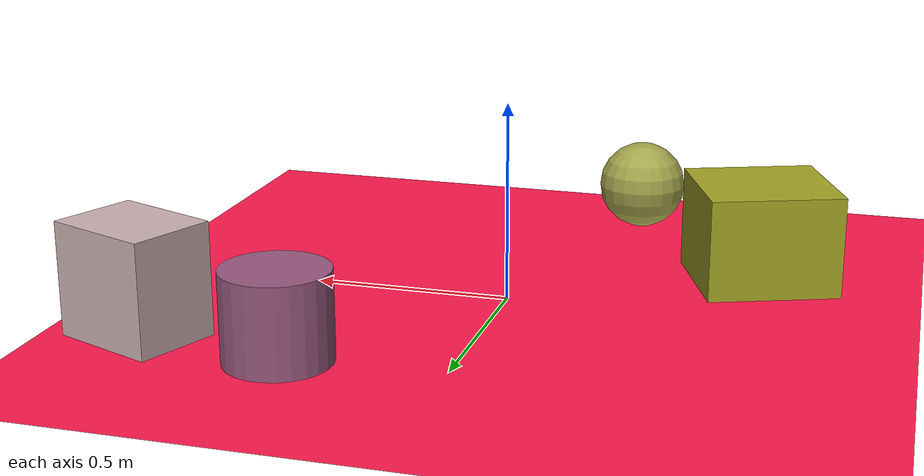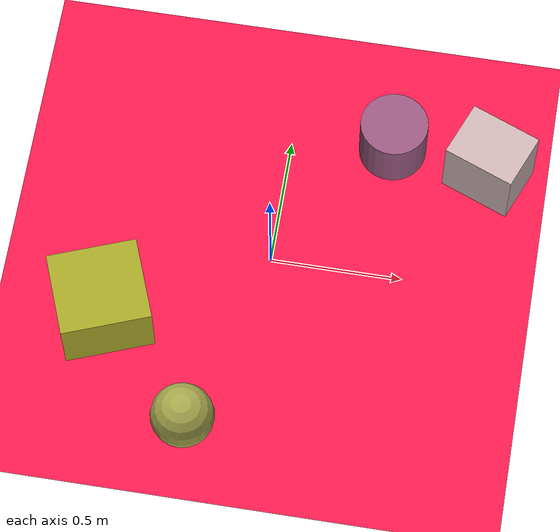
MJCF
<mujoco>
   <asset>
<texture type="skybox" builtin="gradient" rgb1="1.0 0.7 0.6" rgb2="0.7 0.6 0.7" width="256" height="256"/>
<texture name="gradient_0" builtin="gradient" rgb1="0.3 0.3 0.8" rgb2="0.9 0.4 0.2" width="200" height="200"/>
<texture name="gradient_1" builtin="gradient" rgb1="0.7 0.6 0.6" rgb2="0.9 0.8 0.8" width="200" height="200"/>
<texture name="gradient_2" builtin="gradient" rgb1="0.3 0.7 0.4" rgb2="1.0 0.6 0.2" width="200" height="200"/>
<texture name="gradient_3" builtin="gradient" rgb1="0.7 0.6 0.0" rgb2="0.6 0.7 0.3" width="200" height="200"/><material name="gradient_0_mat" reflectance="0" texture="gradient_0" texuniform="true"/>
<material name="gradient_1_mat" reflectance="0" texture="gradient_1" texuniform="true"/>
<material name="gradient_2_mat" reflectance="0" texture="gradient_2" texuniform="true"/>
<material name="gradient_3_mat" reflectance="0" texture="gradient_3" texuniform="true"/>
   </asset>

   <worldbody>
      <light diffuse=".9 .9 .9" pos="0 0 3" dir="0 0 -1"/>
     <geom type="plane" size="1 1 0.1" rgba="1.0 0.1 0.3 1"/>
<geom type="cylinder" pos="0.39 0.54 0.11" size="0.13 0.11 0.11" material="gradient_0_mat" euler="0 0 6" />
<geom type="box" pos="0.77 0.48 0.14" size="0.11 0.14 0.14" material="gradient_1_mat" euler="0 0 68" />
<geom type="sphere" pos="-0.21 -0.72 0.12" size="0.12 0.12 0.12" material="gradient_2_mat" euler="0 0 21" />
<geom type="box" pos="-0.59 -0.32 0.13" size="0.17 0.16 0.13" material="gradient_3_mat" euler="0 0 21" /><camera euler="60 0 180" fovy="60" name="camera1" pos="-0.2 -1.5 1"></camera>   </worldbody>
</mujoco>
